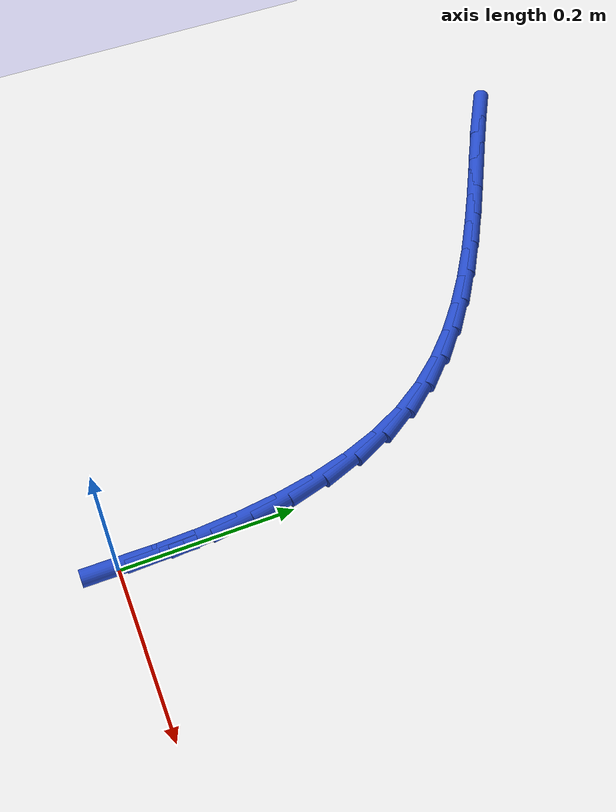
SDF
<sdf version="1.6">
 <world name="default">
  <model name="ground_plane">
   <static>1</static>
   <link name="link">
    <collision name="collision">
     <geometry><plane><normal>0 0 1</normal><size>100 100</size></plane></geometry>
     <surface><friction><ode><mu>100</mu><mu2>50</mu2></ode></friction></surface>
    </collision>
    <visual name="visual">
     <cast_shadows>0</cast_shadows>
     <geometry><plane><normal>0 0 1</normal><size>100 100</size></plane></geometry>
     <material>
      <script><uri>file://media/materials/scripts/gazebo.material</uri><name>Gazebo/WhiteGlow</name></script>
     </material>
    </visual>
   </link>
  </model>
  <model name="line">
   <link name="link_0">
    <pose>8.673617379884035e-19 4.163336342344337e-17 0.01 0 1.57 1.5638885327996237</pose>
    <collision name="collision">
     <geometry><cylinder><radius>0.01</radius><length>0.08</length></cylinder></geometry>
    </collision>
    <visual name="visual">
     <material>
      <script><name>Gazebo/Blue</name><uri>file://media/materials/scripts/gazebo.material</uri></script>
     </material>
     <geometry><cylinder><radius>0.01</radius><length>0.08</length></cylinder></geometry>
    </visual>
   </link>
   <link name="link_1">
    <pose>0.00033320009378289483 0.04823461645726469 0.01 0 1.57 -1.542027845524823</pose>
    <collision name="collision">
     <geometry><cylinder><radius>0.01</radius><length>0.08</length></cylinder></geometry>
    </collision>
    <visual name="visual">
     <material>
      <script><name>Gazebo/Blue</name><uri>file://media/materials/scripts/gazebo.material</uri></script>
     </material>
     <geometry><cylinder><radius>0.01</radius><length>0.08</length></cylinder></geometry>
    </visual>
   </link>
   <link name="link_2">
    <pose>-0.0010524073878866967 0.09638541012868167 0.01 0 1.57 -1.4980301199870125</pose>
    <collision name="collision">
     <geometry><cylinder><radius>0.01</radius><length>0.08</length></cylinder></geometry>
    </collision>
    <visual name="visual">
     <material>
      <script><name>Gazebo/Blue</name><uri>file://media/materials/scripts/gazebo.material</uri></script>
     </material>
     <geometry><cylinder><radius>0.01</radius><length>0.08</length></cylinder></geometry>
    </visual>
   </link>
   <link name="link_3">
    <pose>-0.004523898142646754 0.1440086359811894 0.01 0 1.57 -1.4444798290233207</pose>
    <collision name="collision">
     <geometry><cylinder><radius>0.01</radius><length>0.08</length></cylinder></geometry>
    </collision>
    <visual name="visual">
     <material>
      <script><name>Gazebo/Blue</name><uri>file://media/materials/scripts/gazebo.material</uri></script>
     </material>
     <geometry><cylinder><radius>0.01</radius><length>0.08</length></cylinder></geometry>
    </visual>
   </link>
   <link name="link_4">
    <pose>-0.010448347868135255 0.19066054898172638 0.01 0 1.57 -1.3798470282256463</pose>
    <collision name="collision">
     <geometry><cylinder><radius>0.01</radius><length>0.08</length></cylinder></geometry>
    </collision>
    <visual name="visual">
     <material>
      <script><name>Gazebo/Blue</name><uri>file://media/materials/scripts/gazebo.material</uri></script>
     </material>
     <geometry><cylinder><radius>0.01</radius><length>0.08</length></cylinder></geometry>
    </visual>
   </link>
   <link name="link_5">
    <pose>-0.019192832261990186 0.2358974040972311 0.01 0 1.57 -1.3023737410846434</pose>
    <collision name="collision">
     <geometry><cylinder><radius>0.01</radius><length>0.08</length></cylinder></geometry>
    </collision>
    <visual name="visual">
     <material>
      <script><name>Gazebo/Blue</name><uri>file://media/materials/scripts/gazebo.material</uri></script>
     </material>
     <geometry><cylinder><radius>0.01</radius><length>0.08</length></cylinder></geometry>
    </visual>
   </link>
   <link name="link_6">
    <pose>-0.03112442702184952 0.27927545629464184 0.01 0 1.57 -1.2102666559706432</pose>
    <collision name="collision">
     <geometry><cylinder><radius>0.01</radius><length>0.08</length></cylinder></geometry>
    </collision>
    <visual name="visual">
     <material>
      <script><name>Gazebo/Blue</name><uri>file://media/materials/scripts/gazebo.material</uri></script>
     </material>
     <geometry><cylinder><radius>0.01</radius><length>0.08</length></cylinder></geometry>
    </visual>
   </link>
   <link name="link_7">
    <pose>-0.046610207845351234 0.32035096054089734 0.01 0 1.57 -1.1021014326998315</pose>
    <collision name="collision">
     <geometry><cylinder><radius>0.01</radius><length>0.08</length></cylinder></geometry>
    </collision>
    <visual name="visual">
     <material>
      <script><name>Gazebo/Blue</name><uri>file://media/materials/scripts/gazebo.material</uri></script>
     </material>
     <geometry><cylinder><radius>0.01</radius><length>0.08</length></cylinder></geometry>
    </visual>
   </link>
   <link name="link_8">
    <pose>-0.06601725043013332 0.3586801718029359 0.01 0 1.57 -0.9810699827617393</pose>
    <collision name="collision">
     <geometry><cylinder><radius>0.01</radius><length>0.08</length></cylinder></geometry>
    </collision>
    <visual name="visual">
     <material>
      <script><name>Gazebo/Blue</name><uri>file://media/materials/scripts/gazebo.material</uri></script>
     </material>
     <geometry><cylinder><radius>0.01</radius><length>0.08</length></cylinder></geometry>
    </visual>
   </link>
   <link name="link_9">
    <pose>-0.08960336815751724 0.39392755590297973 0.01 0 1.57 -0.8667612638911113</pose>
    <collision name="collision">
     <geometry><cylinder><radius>0.01</radius><length>0.08</length></cylinder></geometry>
    </collision>
    <visual name="visual">
     <material>
      <script><name>Gazebo/Blue</name><uri>file://media/materials/scripts/gazebo.material</uri></script>
     </material>
     <geometry><cylinder><radius>0.01</radius><length>0.08</length></cylinder></geometry>
    </visual>
   </link>
   <link name="link_10">
    <pose>-0.11708719861495066 0.4262915658215913 0.01 0 1.57 -0.7674553291350986</pose>
    <collision name="collision">
     <geometry><cylinder><radius>0.01</radius><length>0.08</length></cylinder></geometry>
    </collision>
    <visual name="visual">
     <material>
      <script><name>Gazebo/Blue</name><uri>file://media/materials/scripts/gazebo.material</uri></script>
     </material>
     <geometry><cylinder><radius>0.01</radius><length>0.08</length></cylinder></geometry>
    </visual>
   </link>
   <link name="link_11">
    <pose>-0.1480213548800331 0.4561350813500975 0.01 0 1.57 -0.6843029180578902</pose>
    <collision name="collision">
     <geometry><cylinder><radius>0.01</radius><length>0.08</length></cylinder></geometry>
    </collision>
    <visual name="visual">
     <material>
      <script><name>Gazebo/Blue</name><uri>file://media/materials/scripts/gazebo.material</uri></script>
     </material>
     <geometry><cylinder><radius>0.01</radius><length>0.08</length></cylinder></geometry>
    </visual>
   </link>
   <link name="link_12">
    <pose>-0.1819584038611522 0.4838210280047396 0.01 0 1.57 -0.6170709906054938</pose>
    <collision name="collision">
     <geometry><cylinder><radius>0.01</radius><length>0.08</length></cylinder></geometry>
    </collision>
    <visual name="visual">
     <material>
      <script><name>Gazebo/Blue</name><uri>file://media/materials/scripts/gazebo.material</uri></script>
     </material>
     <geometry><cylinder><radius>0.01</radius><length>0.08</length></cylinder></geometry>
    </visual>
   </link>
   <link name="link_13">
    <pose>-0.21845091246669512 0.5097123313017579 0.01 0 1.57 -0.5648019596562728</pose>
    <collision name="collision">
     <geometry><cylinder><radius>0.01</radius><length>0.08</length></cylinder></geometry>
    </collision>
    <visual name="visual">
     <material>
      <script><name>Gazebo/Blue</name><uri>file://media/materials/scripts/gazebo.material</uri></script>
     </material>
     <geometry><cylinder><radius>0.01</radius><length>0.08</length></cylinder></geometry>
    </visual>
   </link>
   <link name="link_14">
    <pose>-0.2570514476050492 0.5341719167573932 0.01 0 1.57 -0.5263146158345897</pose>
    <collision name="collision">
     <geometry><cylinder><radius>0.01</radius><length>0.08</length></cylinder></geometry>
    </collision>
    <visual name="visual">
     <material>
      <script><name>Gazebo/Blue</name><uri>file://media/materials/scripts/gazebo.material</uri></script>
     </material>
     <geometry><cylinder><radius>0.01</radius><length>0.08</length></cylinder></geometry>
    </visual>
   </link>
   <link name="link_15">
    <pose>-0.29731257618460194 0.5575627098878863 0.01 0 1.57 -0.5005090120355066</pose>
    <collision name="collision">
     <geometry><cylinder><radius>0.01</radius><length>0.08</length></cylinder></geometry>
    </collision>
    <visual name="visual">
     <material>
      <script><name>Gazebo/Blue</name><uri>file://media/materials/scripts/gazebo.material</uri></script>
     </material>
     <geometry><cylinder><radius>0.01</radius><length>0.08</length></cylinder></geometry>
    </visual>
   </link>
   <link name="link_16">
    <pose>-0.3387868651137407 0.5802476362094778 0.01 0 1.57 -0.48652236502355717</pose>
    <collision name="collision">
     <geometry><cylinder><radius>0.01</radius><length>0.08</length></cylinder></geometry>
    </collision>
    <visual name="visual">
     <material>
      <script><name>Gazebo/Blue</name><uri>file://media/materials/scripts/gazebo.material</uri></script>
     </material>
     <geometry><cylinder><radius>0.01</radius><length>0.08</length></cylinder></geometry>
    </visual>
   </link>
   <link name="link_17">
    <pose>-0.38102688130085255 0.6025896212384084 0.01 0 1.57 -0.4837942739647934</pose>
    <collision name="collision">
     <geometry><cylinder><radius>0.01</radius><length>0.08</length></cylinder></geometry>
    </collision>
    <visual name="visual">
     <material>
      <script><name>Gazebo/Blue</name><uri>file://media/materials/scripts/gazebo.material</uri></script>
     </material>
     <geometry><cylinder><radius>0.01</radius><length>0.08</length></cylinder></geometry>
    </visual>
   </link>
   <link name="link_18">
    <pose>-0.42358519165432507 0.6249515904909191 0.01 0 1.57 -0.49208320364753905</pose>
    <collision name="collision">
     <geometry><cylinder><radius>0.01</radius><length>0.08</length></cylinder></geometry>
    </collision>
    <visual name="visual">
     <material>
      <script><name>Gazebo/Blue</name><uri>file://media/materials/scripts/gazebo.material</uri></script>
     </material>
     <geometry><cylinder><radius>0.01</radius><length>0.08</length></cylinder></geometry>
    </visual>
   </link>
   <link name="link_19">
    <pose>-0.4660143630825456 0.6476964694832503 0.01 0 1.57 -0.5114565291394675</pose>
    <collision name="collision">
     <geometry><cylinder><radius>0.01</radius><length>0.08</length></cylinder></geometry>
    </collision>
    <visual name="visual">
     <material>
      <script><name>Gazebo/Blue</name><uri>file://media/materials/scripts/gazebo.material</uri></script>
     </material>
     <geometry><cylinder><radius>0.01</radius><length>0.08</length></cylinder></geometry>
    </visual>
   </link>
   <link name="link_171">
    <pose>0.00042268957967962935 0.04827921758091536 0.01 0 1.57 1.5620414463022998</pose>
    <collision name="collision">
     <geometry><cylinder><radius>0.01</radius><length>0.08</length></cylinder></geometry>
    </collision>
    <visual name="visual">
     <material>
      <script><name>Gazebo/Blue</name><uri>file://media/materials/scripts/gazebo.material</uri></script>
     </material>
     <geometry><cylinder><radius>0.01</radius><length>0.08</length></cylinder></geometry>
    </visual>
   </link>
  </model>
 </world>
</sdf>
